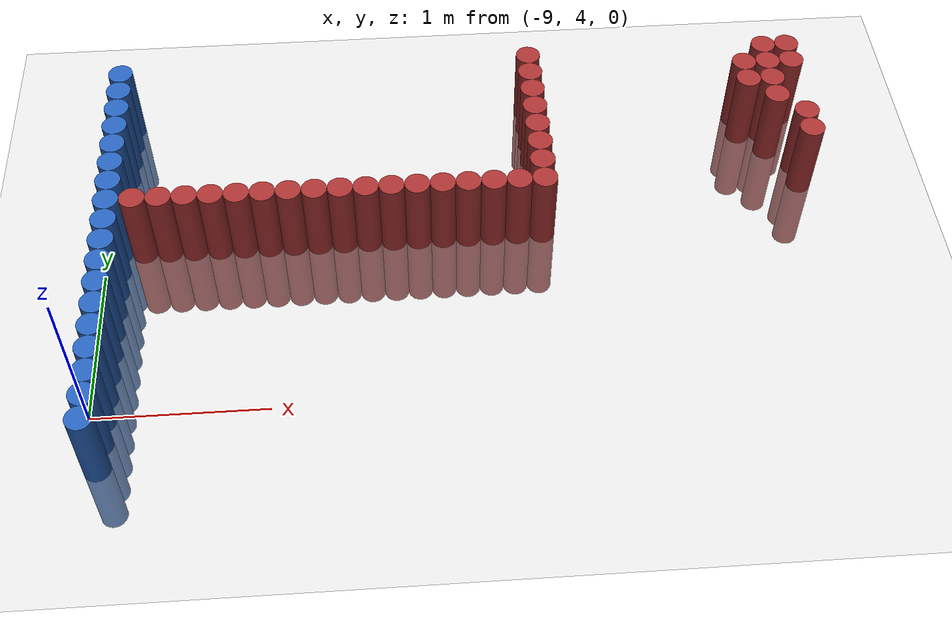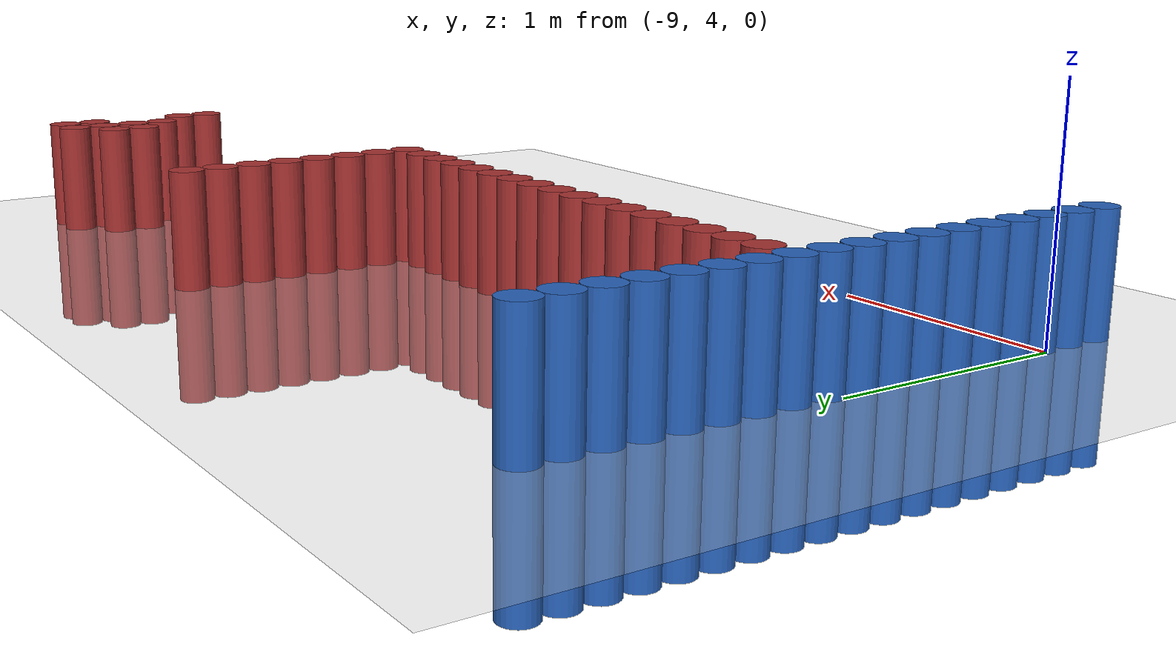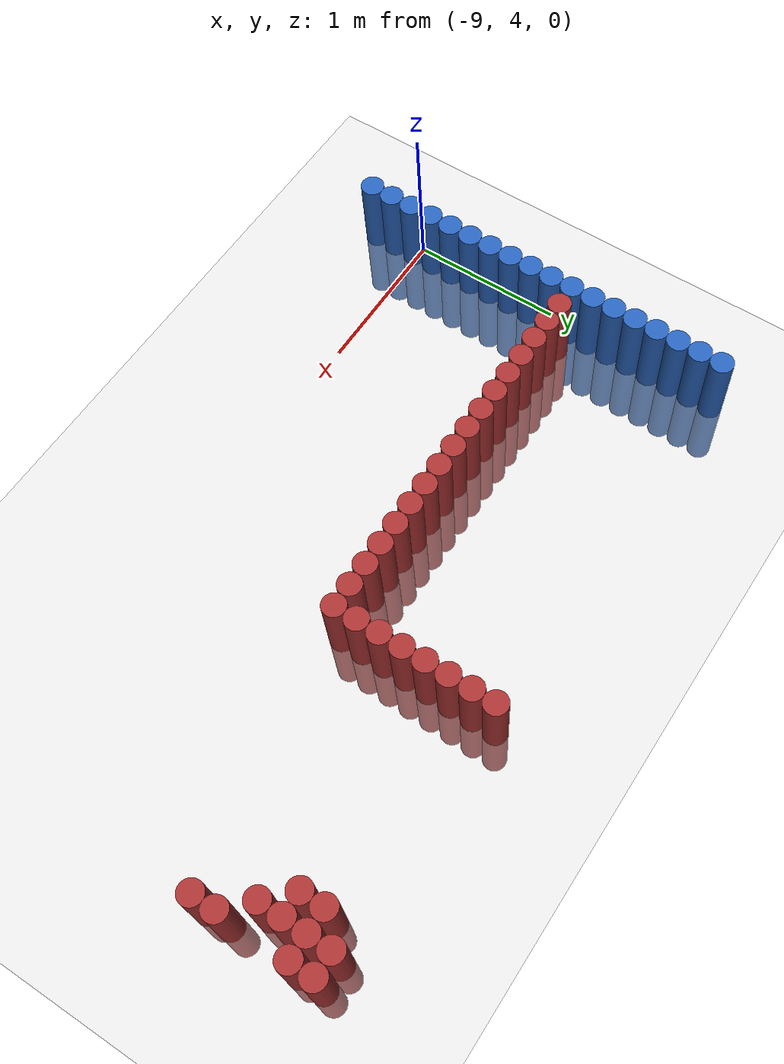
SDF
<sdf version="1.6">
 <world name="default">
  <model name="ground_plane">
   <static>1</static>
   <link name="link">
    <collision name="collision">
     <geometry><plane><normal>0 0 1</normal><size>100 100</size></plane></geometry>
     <surface><friction><ode><mu>100</mu><mu2>50</mu2></ode></friction></surface>
    </collision>
    <visual name="visual">
     <cast_shadows>0</cast_shadows>
     <geometry><plane><normal>0 0 1</normal><size>100 100</size></plane></geometry>
     <material>
      <script><uri>file://media/materials/scripts/gazebo.material</uri><name>Gazebo/Grey</name></script>
     </material>
    </visual>
   </link>
  </model>
  <model name="unit_cylinder_106">
   <static>1</static>
   <pose>-8.925000 3.675000 0.000000 0.000000 0.000000 0.000000</pose>
   <link name="link">
    <inertial>
     <mass>1</mass>
     <inertia><ixx>0.145833</ixx><ixy>0</ixy><ixz>0</ixz><iyy>0.145833</iyy><iyz>0</iyz><izz>0.125</izz></inertia>
    </inertial>
    <collision name="collision">
     <geometry><cylinder><radius>0.075000</radius><length>1</length></cylinder></geometry>
    </collision>
    <visual name="visual">
     <geometry><cylinder><radius>0.075000</radius><length>1</length></cylinder></geometry>
     <material>
      <ambient>0.152000 0.379000 0.720000 1</ambient>
      <diffuse>0.152000 0.379000 0.720000 1</diffuse>
     </material>
     <material>
      <script><name>Gazebo/Grey</name><uri>file://media/materials/scripts/gazebo.material</uri></script>
     </material>
    </visual>
   </link>
  </model>
  <model name="unit_cylinder_108">
   <static>1</static>
   <pose>-8.925000 3.825000 0.000000 0.000000 0.000000 0.000000</pose>
   <link name="link">
    <inertial>
     <mass>1</mass>
     <inertia><ixx>0.145833</ixx><ixy>0</ixy><ixz>0</ixz><iyy>0.145833</iyy><iyz>0</iyz><izz>0.125</izz></inertia>
    </inertial>
    <collision name="collision">
     <geometry><cylinder><radius>0.075000</radius><length>1</length></cylinder></geometry>
    </collision>
    <visual name="visual">
     <geometry><cylinder><radius>0.075000</radius><length>1</length></cylinder></geometry>
     <material>
      <ambient>0.152000 0.379000 0.720000 1</ambient>
      <diffuse>0.152000 0.379000 0.720000 1</diffuse>
     </material>
     <material>
      <script><name>Gazebo/Grey</name><uri>file://media/materials/scripts/gazebo.material</uri></script>
     </material>
    </visual>
   </link>
  </model>
  <model name="unit_cylinder_110">
   <static>1</static>
   <pose>-8.925000 3.975000 0.000000 0.000000 0.000000 0.000000</pose>
   <link name="link">
    <inertial>
     <mass>1</mass>
     <inertia><ixx>0.145833</ixx><ixy>0</ixy><ixz>0</ixz><iyy>0.145833</iyy><iyz>0</iyz><izz>0.125</izz></inertia>
    </inertial>
    <collision name="collision">
     <geometry><cylinder><radius>0.075000</radius><length>1</length></cylinder></geometry>
    </collision>
    <visual name="visual">
     <geometry><cylinder><radius>0.075000</radius><length>1</length></cylinder></geometry>
     <material>
      <ambient>0.152000 0.379000 0.720000 1</ambient>
      <diffuse>0.152000 0.379000 0.720000 1</diffuse>
     </material>
     <material>
      <script><name>Gazebo/Grey</name><uri>file://media/materials/scripts/gazebo.material</uri></script>
     </material>
    </visual>
   </link>
  </model>
  <model name="unit_cylinder_112">
   <static>1</static>
   <pose>-8.925000 4.125000 0.000000 0.000000 0.000000 0.000000</pose>
   <link name="link">
    <inertial>
     <mass>1</mass>
     <inertia><ixx>0.145833</ixx><ixy>0</ixy><ixz>0</ixz><iyy>0.145833</iyy><iyz>0</iyz><izz>0.125</izz></inertia>
    </inertial>
    <collision name="collision">
     <geometry><cylinder><radius>0.075000</radius><length>1</length></cylinder></geometry>
    </collision>
    <visual name="visual">
     <geometry><cylinder><radius>0.075000</radius><length>1</length></cylinder></geometry>
     <material>
      <ambient>0.152000 0.379000 0.720000 1</ambient>
      <diffuse>0.152000 0.379000 0.720000 1</diffuse>
     </material>
     <material>
      <script><name>Gazebo/Grey</name><uri>file://media/materials/scripts/gazebo.material</uri></script>
     </material>
    </visual>
   </link>
  </model>
  <model name="unit_cylinder_114">
   <static>1</static>
   <pose>-8.925000 4.275000 0.000000 0.000000 0.000000 0.000000</pose>
   <link name="link">
    <inertial>
     <mass>1</mass>
     <inertia><ixx>0.145833</ixx><ixy>0</ixy><ixz>0</ixz><iyy>0.145833</iyy><iyz>0</iyz><izz>0.125</izz></inertia>
    </inertial>
    <collision name="collision">
     <geometry><cylinder><radius>0.075000</radius><length>1</length></cylinder></geometry>
    </collision>
    <visual name="visual">
     <geometry><cylinder><radius>0.075000</radius><length>1</length></cylinder></geometry>
     <material>
      <ambient>0.152000 0.379000 0.720000 1</ambient>
      <diffuse>0.152000 0.379000 0.720000 1</diffuse>
     </material>
     <material>
      <script><name>Gazebo/Grey</name><uri>file://media/materials/scripts/gazebo.material</uri></script>
     </material>
    </visual>
   </link>
  </model>
  <model name="unit_cylinder_116">
   <static>1</static>
   <pose>-8.925000 4.425000 0.000000 0.000000 0.000000 0.000000</pose>
   <link name="link">
    <inertial>
     <mass>1</mass>
     <inertia><ixx>0.145833</ixx><ixy>0</ixy><ixz>0</ixz><iyy>0.145833</iyy><iyz>0</iyz><izz>0.125</izz></inertia>
    </inertial>
    <collision name="collision">
     <geometry><cylinder><radius>0.075000</radius><length>1</length></cylinder></geometry>
    </collision>
    <visual name="visual">
     <geometry><cylinder><radius>0.075000</radius><length>1</length></cylinder></geometry>
     <material>
      <ambient>0.152000 0.379000 0.720000 1</ambient>
      <diffuse>0.152000 0.379000 0.720000 1</diffuse>
     </material>
     <material>
      <script><name>Gazebo/Grey</name><uri>file://media/materials/scripts/gazebo.material</uri></script>
     </material>
    </visual>
   </link>
  </model>
  <model name="unit_cylinder_118">
   <static>1</static>
   <pose>-8.925000 4.575000 0.000000 0.000000 0.000000 0.000000</pose>
   <link name="link">
    <inertial>
     <mass>1</mass>
     <inertia><ixx>0.145833</ixx><ixy>0</ixy><ixz>0</ixz><iyy>0.145833</iyy><iyz>0</iyz><izz>0.125</izz></inertia>
    </inertial>
    <collision name="collision">
     <geometry><cylinder><radius>0.075000</radius><length>1</length></cylinder></geometry>
    </collision>
    <visual name="visual">
     <geometry><cylinder><radius>0.075000</radius><length>1</length></cylinder></geometry>
     <material>
      <ambient>0.152000 0.379000 0.720000 1</ambient>
      <diffuse>0.152000 0.379000 0.720000 1</diffuse>
     </material>
     <material>
      <script><name>Gazebo/Grey</name><uri>file://media/materials/scripts/gazebo.material</uri></script>
     </material>
    </visual>
   </link>
  </model>
  <model name="unit_cylinder_120">
   <static>1</static>
   <pose>-8.925000 4.725000 0.000000 0.000000 0.000000 0.000000</pose>
   <link name="link">
    <inertial>
     <mass>1</mass>
     <inertia><ixx>0.145833</ixx><ixy>0</ixy><ixz>0</ixz><iyy>0.145833</iyy><iyz>0</iyz><izz>0.125</izz></inertia>
    </inertial>
    <collision name="collision">
     <geometry><cylinder><radius>0.075000</radius><length>1</length></cylinder></geometry>
    </collision>
    <visual name="visual">
     <geometry><cylinder><radius>0.075000</radius><length>1</length></cylinder></geometry>
     <material>
      <ambient>0.152000 0.379000 0.720000 1</ambient>
      <diffuse>0.152000 0.379000 0.720000 1</diffuse>
     </material>
     <material>
      <script><name>Gazebo/Grey</name><uri>file://media/materials/scripts/gazebo.material</uri></script>
     </material>
    </visual>
   </link>
  </model>
  <model name="unit_cylinder_122">
   <static>1</static>
   <pose>-8.925000 4.875000 0.000000 0.000000 0.000000 0.000000</pose>
   <link name="link">
    <inertial>
     <mass>1</mass>
     <inertia><ixx>0.145833</ixx><ixy>0</ixy><ixz>0</ixz><iyy>0.145833</iyy><iyz>0</iyz><izz>0.125</izz></inertia>
    </inertial>
    <collision name="collision">
     <geometry><cylinder><radius>0.075000</radius><length>1</length></cylinder></geometry>
    </collision>
    <visual name="visual">
     <geometry><cylinder><radius>0.075000</radius><length>1</length></cylinder></geometry>
     <material>
      <ambient>0.152000 0.379000 0.720000 1</ambient>
      <diffuse>0.152000 0.379000 0.720000 1</diffuse>
     </material>
     <material>
      <script><name>Gazebo/Grey</name><uri>file://media/materials/scripts/gazebo.material</uri></script>
     </material>
    </visual>
   </link>
  </model>
  <model name="unit_cylinder_124">
   <static>1</static>
   <pose>-8.925000 5.025000 0.000000 0.000000 0.000000 0.000000</pose>
   <link name="link">
    <inertial>
     <mass>1</mass>
     <inertia><ixx>0.145833</ixx><ixy>0</ixy><ixz>0</ixz><iyy>0.145833</iyy><iyz>0</iyz><izz>0.125</izz></inertia>
    </inertial>
    <collision name="collision">
     <geometry><cylinder><radius>0.075000</radius><length>1</length></cylinder></geometry>
    </collision>
    <visual name="visual">
     <geometry><cylinder><radius>0.075000</radius><length>1</length></cylinder></geometry>
     <material>
      <ambient>0.152000 0.379000 0.720000 1</ambient>
      <diffuse>0.152000 0.379000 0.720000 1</diffuse>
     </material>
     <material>
      <script><name>Gazebo/Grey</name><uri>file://media/materials/scripts/gazebo.material</uri></script>
     </material>
    </visual>
   </link>
  </model>
  <model name="unit_cylinder_125">
   <static>1</static>
   <pose>-8.925000 5.175000 0.000000 0.000000 0.000000 0.000000</pose>
   <link name="link">
    <inertial>
     <mass>1</mass>
     <inertia><ixx>0.145833</ixx><ixy>0</ixy><ixz>0</ixz><iyy>0.145833</iyy><iyz>0</iyz><izz>0.125</izz></inertia>
    </inertial>
    <collision name="collision">
     <geometry><cylinder><radius>0.075000</radius><length>1</length></cylinder></geometry>
    </collision>
    <visual name="visual">
     <geometry><cylinder><radius>0.075000</radius><length>1</length></cylinder></geometry>
     <material>
      <ambient>0.152000 0.379000 0.720000 1</ambient>
      <diffuse>0.152000 0.379000 0.720000 1</diffuse>
     </material>
     <material>
      <script><name>Gazebo/Grey</name><uri>file://media/materials/scripts/gazebo.material</uri></script>
     </material>
    </visual>
   </link>
  </model>
  <model name="unit_cylinder_126">
   <static>1</static>
   <pose>-8.925000 5.325000 0.000000 0.000000 0.000000 0.000000</pose>
   <link name="link">
    <inertial>
     <mass>1</mass>
     <inertia><ixx>0.145833</ixx><ixy>0</ixy><ixz>0</ixz><iyy>0.145833</iyy><iyz>0</iyz><izz>0.125</izz></inertia>
    </inertial>
    <collision name="collision">
     <geometry><cylinder><radius>0.075000</radius><length>1</length></cylinder></geometry>
    </collision>
    <visual name="visual">
     <geometry><cylinder><radius>0.075000</radius><length>1</length></cylinder></geometry>
     <material>
      <ambient>0.152000 0.379000 0.720000 1</ambient>
      <diffuse>0.152000 0.379000 0.720000 1</diffuse>
     </material>
     <material>
      <script><name>Gazebo/Grey</name><uri>file://media/materials/scripts/gazebo.material</uri></script>
     </material>
    </visual>
   </link>
  </model>
  <model name="unit_cylinder_127">
   <static>1</static>
   <pose>-8.925000 5.475000 0.000000 0.000000 0.000000 0.000000</pose>
   <link name="link">
    <inertial>
     <mass>1</mass>
     <inertia><ixx>0.145833</ixx><ixy>0</ixy><ixz>0</ixz><iyy>0.145833</iyy><iyz>0</iyz><izz>0.125</izz></inertia>
    </inertial>
    <collision name="collision">
     <geometry><cylinder><radius>0.075000</radius><length>1</length></cylinder></geometry>
    </collision>
    <visual name="visual">
     <geometry><cylinder><radius>0.075000</radius><length>1</length></cylinder></geometry>
     <material>
      <ambient>0.152000 0.379000 0.720000 1</ambient>
      <diffuse>0.152000 0.379000 0.720000 1</diffuse>
     </material>
     <material>
      <script><name>Gazebo/Grey</name><uri>file://media/materials/scripts/gazebo.material</uri></script>
     </material>
    </visual>
   </link>
  </model>
  <model name="unit_cylinder_128">
   <static>1</static>
   <pose>-8.925000 5.625000 0.000000 0.000000 0.000000 0.000000</pose>
   <link name="link">
    <inertial>
     <mass>1</mass>
     <inertia><ixx>0.145833</ixx><ixy>0</ixy><ixz>0</ixz><iyy>0.145833</iyy><iyz>0</iyz><izz>0.125</izz></inertia>
    </inertial>
    <collision name="collision">
     <geometry><cylinder><radius>0.075000</radius><length>1</length></cylinder></geometry>
    </collision>
    <visual name="visual">
     <geometry><cylinder><radius>0.075000</radius><length>1</length></cylinder></geometry>
     <material>
      <ambient>0.152000 0.379000 0.720000 1</ambient>
      <diffuse>0.152000 0.379000 0.720000 1</diffuse>
     </material>
     <material>
      <script><name>Gazebo/Grey</name><uri>file://media/materials/scripts/gazebo.material</uri></script>
     </material>
    </visual>
   </link>
  </model>
  <model name="unit_cylinder_129">
   <static>1</static>
   <pose>-8.925000 5.775000 0.000000 0.000000 0.000000 0.000000</pose>
   <link name="link">
    <inertial>
     <mass>1</mass>
     <inertia><ixx>0.145833</ixx><ixy>0</ixy><ixz>0</ixz><iyy>0.145833</iyy><iyz>0</iyz><izz>0.125</izz></inertia>
    </inertial>
    <collision name="collision">
     <geometry><cylinder><radius>0.075000</radius><length>1</length></cylinder></geometry>
    </collision>
    <visual name="visual">
     <geometry><cylinder><radius>0.075000</radius><length>1</length></cylinder></geometry>
     <material>
      <ambient>0.152000 0.379000 0.720000 1</ambient>
      <diffuse>0.152000 0.379000 0.720000 1</diffuse>
     </material>
     <material>
      <script><name>Gazebo/Grey</name><uri>file://media/materials/scripts/gazebo.material</uri></script>
     </material>
    </visual>
   </link>
  </model>
  <model name="unit_cylinder_130">
   <static>1</static>
   <pose>-8.925000 5.925000 0.000000 0.000000 0.000000 0.000000</pose>
   <link name="link">
    <inertial>
     <mass>1</mass>
     <inertia><ixx>0.145833</ixx><ixy>0</ixy><ixz>0</ixz><iyy>0.145833</iyy><iyz>0</iyz><izz>0.125</izz></inertia>
    </inertial>
    <collision name="collision">
     <geometry><cylinder><radius>0.075000</radius><length>1</length></cylinder></geometry>
    </collision>
    <visual name="visual">
     <geometry><cylinder><radius>0.075000</radius><length>1</length></cylinder></geometry>
     <material>
      <ambient>0.152000 0.379000 0.720000 1</ambient>
      <diffuse>0.152000 0.379000 0.720000 1</diffuse>
     </material>
     <material>
      <script><name>Gazebo/Grey</name><uri>file://media/materials/scripts/gazebo.material</uri></script>
     </material>
    </visual>
   </link>
  </model>
  <model name="unit_cylinder_131">
   <static>1</static>
   <pose>-8.925000 6.075000 0.000000 0.000000 0.000000 0.000000</pose>
   <link name="link">
    <inertial>
     <mass>1</mass>
     <inertia><ixx>0.145833</ixx><ixy>0</ixy><ixz>0</ixz><iyy>0.145833</iyy><iyz>0</iyz><izz>0.125</izz></inertia>
    </inertial>
    <collision name="collision">
     <geometry><cylinder><radius>0.075000</radius><length>1</length></cylinder></geometry>
    </collision>
    <visual name="visual">
     <geometry><cylinder><radius>0.075000</radius><length>1</length></cylinder></geometry>
     <material>
      <ambient>0.152000 0.379000 0.720000 1</ambient>
      <diffuse>0.152000 0.379000 0.720000 1</diffuse>
     </material>
     <material>
      <script><name>Gazebo/Grey</name><uri>file://media/materials/scripts/gazebo.material</uri></script>
     </material>
    </visual>
   </link>
  </model>
  <model name="unit_cylinder_132">
   <static>1</static>
   <pose>-8.925000 6.225000 0.000000 0.000000 0.000000 0.000000</pose>
   <link name="link">
    <inertial>
     <mass>1</mass>
     <inertia><ixx>0.145833</ixx><ixy>0</ixy><ixz>0</ixz><iyy>0.145833</iyy><iyz>0</iyz><izz>0.125</izz></inertia>
    </inertial>
    <collision name="collision">
     <geometry><cylinder><radius>0.075000</radius><length>1</length></cylinder></geometry>
    </collision>
    <visual name="visual">
     <geometry><cylinder><radius>0.075000</radius><length>1</length></cylinder></geometry>
     <material>
      <ambient>0.152000 0.379000 0.720000 1</ambient>
      <diffuse>0.152000 0.379000 0.720000 1</diffuse>
     </material>
     <material>
      <script><name>Gazebo/Grey</name><uri>file://media/materials/scripts/gazebo.material</uri></script>
     </material>
    </visual>
   </link>
  </model>
  <model name="unit_cylinder_155">
   <static>1</static>
   <pose>-8.775000 5.175000 0.000000 0.000000 0.000000 0.000000</pose>
   <link name="link">
    <inertial>
     <mass>1</mass>
     <inertia><ixx>0.145833</ixx><ixy>0</ixy><ixz>0</ixz><iyy>0.145833</iyy><iyz>0</iyz><izz>0.125</izz></inertia>
    </inertial>
    <collision name="collision">
     <geometry><cylinder><radius>0.075000</radius><length>1</length></cylinder></geometry>
    </collision>
    <visual name="visual">
     <geometry><cylinder><radius>0.075000</radius><length>1</length></cylinder></geometry>
     <material>
      <ambient>0.648000 0.192000 0.192000 1</ambient>
      <diffuse>0.648000 0.192000 0.192000 1</diffuse>
     </material>
     <material>
      <script><name>Gazebo/Grey</name><uri>file://media/materials/scripts/gazebo.material</uri></script>
     </material>
    </visual>
   </link>
  </model>
  <model name="unit_cylinder_157">
   <static>1</static>
   <pose>-8.625000 5.175000 0.000000 0.000000 0.000000 0.000000</pose>
   <link name="link">
    <inertial>
     <mass>1</mass>
     <inertia><ixx>0.145833</ixx><ixy>0</ixy><ixz>0</ixz><iyy>0.145833</iyy><iyz>0</iyz><izz>0.125</izz></inertia>
    </inertial>
    <collision name="collision">
     <geometry><cylinder><radius>0.075000</radius><length>1</length></cylinder></geometry>
    </collision>
    <visual name="visual">
     <geometry><cylinder><radius>0.075000</radius><length>1</length></cylinder></geometry>
     <material>
      <ambient>0.648000 0.192000 0.192000 1</ambient>
      <diffuse>0.648000 0.192000 0.192000 1</diffuse>
     </material>
     <material>
      <script><name>Gazebo/Grey</name><uri>file://media/materials/scripts/gazebo.material</uri></script>
     </material>
    </visual>
   </link>
  </model>
  <model name="unit_cylinder_159">
   <static>1</static>
   <pose>-8.475000 5.175000 0.000000 0.000000 0.000000 0.000000</pose>
   <link name="link">
    <inertial>
     <mass>1</mass>
     <inertia><ixx>0.145833</ixx><ixy>0</ixy><ixz>0</ixz><iyy>0.145833</iyy><iyz>0</iyz><izz>0.125</izz></inertia>
    </inertial>
    <collision name="collision">
     <geometry><cylinder><radius>0.075000</radius><length>1</length></cylinder></geometry>
    </collision>
    <visual name="visual">
     <geometry><cylinder><radius>0.075000</radius><length>1</length></cylinder></geometry>
     <material>
      <ambient>0.648000 0.192000 0.192000 1</ambient>
      <diffuse>0.648000 0.192000 0.192000 1</diffuse>
     </material>
     <material>
      <script><name>Gazebo/Grey</name><uri>file://media/materials/scripts/gazebo.material</uri></script>
     </material>
    </visual>
   </link>
  </model>
  <model name="unit_cylinder_161">
   <static>1</static>
   <pose>-8.325000 5.175000 0.000000 0.000000 0.000000 0.000000</pose>
   <link name="link">
    <inertial>
     <mass>1</mass>
     <inertia><ixx>0.145833</ixx><ixy>0</ixy><ixz>0</ixz><iyy>0.145833</iyy><iyz>0</iyz><izz>0.125</izz></inertia>
    </inertial>
    <collision name="collision">
     <geometry><cylinder><radius>0.075000</radius><length>1</length></cylinder></geometry>
    </collision>
    <visual name="visual">
     <geometry><cylinder><radius>0.075000</radius><length>1</length></cylinder></geometry>
     <material>
      <ambient>0.648000 0.192000 0.192000 1</ambient>
      <diffuse>0.648000 0.192000 0.192000 1</diffuse>
     </material>
     <material>
      <script><name>Gazebo/Grey</name><uri>file://media/materials/scripts/gazebo.material</uri></script>
     </material>
    </visual>
   </link>
  </model>
  <model name="unit_cylinder_163">
   <static>1</static>
   <pose>-8.175000 5.175000 0.000000 0.000000 0.000000 0.000000</pose>
   <link name="link">
    <inertial>
     <mass>1</mass>
     <inertia><ixx>0.145833</ixx><ixy>0</ixy><ixz>0</ixz><iyy>0.145833</iyy><iyz>0</iyz><izz>0.125</izz></inertia>
    </inertial>
    <collision name="collision">
     <geometry><cylinder><radius>0.075000</radius><length>1</length></cylinder></geometry>
    </collision>
    <visual name="visual">
     <geometry><cylinder><radius>0.075000</radius><length>1</length></cylinder></geometry>
     <material>
      <ambient>0.648000 0.192000 0.192000 1</ambient>
      <diffuse>0.648000 0.192000 0.192000 1</diffuse>
     </material>
     <material>
      <script><name>Gazebo/Grey</name><uri>file://media/materials/scripts/gazebo.material</uri></script>
     </material>
    </visual>
   </link>
  </model>
  <model name="unit_cylinder_176">
   <static>1</static>
   <pose>-8.025000 5.175000 0.000000 0.000000 0.000000 0.000000</pose>
   <link name="link">
    <inertial>
     <mass>1</mass>
     <inertia><ixx>0.145833</ixx><ixy>0</ixy><ixz>0</ixz><iyy>0.145833</iyy><iyz>0</iyz><izz>0.125</izz></inertia>
    </inertial>
    <collision name="collision">
     <geometry><cylinder><radius>0.075000</radius><length>1</length></cylinder></geometry>
    </collision>
    <visual name="visual">
     <geometry><cylinder><radius>0.075000</radius><length>1</length></cylinder></geometry>
     <material>
      <ambient>0.648000 0.192000 0.192000 1</ambient>
      <diffuse>0.648000 0.192000 0.192000 1</diffuse>
     </material>
     <material>
      <script><name>Gazebo/Grey</name><uri>file://media/materials/scripts/gazebo.material</uri></script>
     </material>
    </visual>
   </link>
  </model>
  <model name="unit_cylinder_178">
   <static>1</static>
   <pose>-7.875000 5.175000 0.000000 0.000000 0.000000 0.000000</pose>
   <link name="link">
    <inertial>
     <mass>1</mass>
     <inertia><ixx>0.145833</ixx><ixy>0</ixy><ixz>0</ixz><iyy>0.145833</iyy><iyz>0</iyz><izz>0.125</izz></inertia>
    </inertial>
    <collision name="collision">
     <geometry><cylinder><radius>0.075000</radius><length>1</length></cylinder></geometry>
    </collision>
    <visual name="visual">
     <geometry><cylinder><radius>0.075000</radius><length>1</length></cylinder></geometry>
     <material>
      <ambient>0.648000 0.192000 0.192000 1</ambient>
      <diffuse>0.648000 0.192000 0.192000 1</diffuse>
     </material>
     <material>
      <script><name>Gazebo/Grey</name><uri>file://media/materials/scripts/gazebo.material</uri></script>
     </material>
    </visual>
   </link>
  </model>
  <model name="unit_cylinder_180">
   <static>1</static>
   <pose>-7.725000 5.175000 0.000000 0.000000 0.000000 0.000000</pose>
   <link name="link">
    <inertial>
     <mass>1</mass>
     <inertia><ixx>0.145833</ixx><ixy>0</ixy><ixz>0</ixz><iyy>0.145833</iyy><iyz>0</iyz><izz>0.125</izz></inertia>
    </inertial>
    <collision name="collision">
     <geometry><cylinder><radius>0.075000</radius><length>1</length></cylinder></geometry>
    </collision>
    <visual name="visual">
     <geometry><cylinder><radius>0.075000</radius><length>1</length></cylinder></geometry>
     <material>
      <ambient>0.648000 0.192000 0.192000 1</ambient>
      <diffuse>0.648000 0.192000 0.192000 1</diffuse>
     </material>
     <material>
      <script><name>Gazebo/Grey</name><uri>file://media/materials/scripts/gazebo.material</uri></script>
     </material>
    </visual>
   </link>
  </model>
  <model name="unit_cylinder_182">
   <static>1</static>
   <pose>-7.575000 5.175000 0.000000 0.000000 0.000000 0.000000</pose>
   <link name="link">
    <inertial>
     <mass>1</mass>
     <inertia><ixx>0.145833</ixx><ixy>0</ixy><ixz>0</ixz><iyy>0.145833</iyy><iyz>0</iyz><izz>0.125</izz></inertia>
    </inertial>
    <collision name="collision">
     <geometry><cylinder><radius>0.075000</radius><length>1</length></cylinder></geometry>
    </collision>
    <visual name="visual">
     <geometry><cylinder><radius>0.075000</radius><length>1</length></cylinder></geometry>
     <material>
      <ambient>0.648000 0.192000 0.192000 1</ambient>
      <diffuse>0.648000 0.192000 0.192000 1</diffuse>
     </material>
     <material>
      <script><name>Gazebo/Grey</name><uri>file://media/materials/scripts/gazebo.material</uri></script>
     </material>
    </visual>
   </link>
  </model>
  <model name="unit_cylinder_184">
   <static>1</static>
   <pose>-7.425000 5.175000 0.000000 0.000000 0.000000 0.000000</pose>
   <link name="link">
    <inertial>
     <mass>1</mass>
     <inertia><ixx>0.145833</ixx><ixy>0</ixy><ixz>0</ixz><iyy>0.145833</iyy><iyz>0</iyz><izz>0.125</izz></inertia>
    </inertial>
    <collision name="collision">
     <geometry><cylinder><radius>0.075000</radius><length>1</length></cylinder></geometry>
    </collision>
    <visual name="visual">
     <geometry><cylinder><radius>0.075000</radius><length>1</length></cylinder></geometry>
     <material>
      <ambient>0.648000 0.192000 0.192000 1</ambient>
      <diffuse>0.648000 0.192000 0.192000 1</diffuse>
     </material>
     <material>
      <script><name>Gazebo/Grey</name><uri>file://media/materials/scripts/gazebo.material</uri></script>
     </material>
    </visual>
   </link>
  </model>
  <model name="unit_cylinder_186">
   <static>1</static>
   <pose>-7.275000 5.175000 0.000000 0.000000 0.000000 0.000000</pose>
   <link name="link">
    <inertial>
     <mass>1</mass>
     <inertia><ixx>0.145833</ixx><ixy>0</ixy><ixz>0</ixz><iyy>0.145833</iyy><iyz>0</iyz><izz>0.125</izz></inertia>
    </inertial>
    <collision name="collision">
     <geometry><cylinder><radius>0.075000</radius><length>1</length></cylinder></geometry>
    </collision>
    <visual name="visual">
     <geometry><cylinder><radius>0.075000</radius><length>1</length></cylinder></geometry>
     <material>
      <ambient>0.648000 0.192000 0.192000 1</ambient>
      <diffuse>0.648000 0.192000 0.192000 1</diffuse>
     </material>
     <material>
      <script><name>Gazebo/Grey</name><uri>file://media/materials/scripts/gazebo.material</uri></script>
     </material>
    </visual>
   </link>
  </model>
  <model name="unit_cylinder_198">
   <static>1</static>
   <pose>-7.125000 5.175000 0.000000 0.000000 0.000000 0.000000</pose>
   <link name="link">
    <inertial>
     <mass>1</mass>
     <inertia><ixx>0.145833</ixx><ixy>0</ixy><ixz>0</ixz><iyy>0.145833</iyy><iyz>0</iyz><izz>0.125</izz></inertia>
    </inertial>
    <collision name="collision">
     <geometry><cylinder><radius>0.075000</radius><length>1</length></cylinder></geometry>
    </collision>
    <visual name="visual">
     <geometry><cylinder><radius>0.075000</radius><length>1</length></cylinder></geometry>
     <material>
      <ambient>0.648000 0.192000 0.192000 1</ambient>
      <diffuse>0.648000 0.192000 0.192000 1</diffuse>
     </material>
     <material>
      <script><name>Gazebo/Grey</name><uri>file://media/materials/scripts/gazebo.material</uri></script>
     </material>
    </visual>
   </link>
  </model>
  <model name="unit_cylinder_200">
   <static>1</static>
   <pose>-6.975000 5.175000 0.000000 0.000000 0.000000 0.000000</pose>
   <link name="link">
    <inertial>
     <mass>1</mass>
     <inertia><ixx>0.145833</ixx><ixy>0</ixy><ixz>0</ixz><iyy>0.145833</iyy><iyz>0</iyz><izz>0.125</izz></inertia>
    </inertial>
    <collision name="collision">
     <geometry><cylinder><radius>0.075000</radius><length>1</length></cylinder></geometry>
    </collision>
    <visual name="visual">
     <geometry><cylinder><radius>0.075000</radius><length>1</length></cylinder></geometry>
     <material>
      <ambient>0.648000 0.192000 0.192000 1</ambient>
      <diffuse>0.648000 0.192000 0.192000 1</diffuse>
     </material>
     <material>
      <script><name>Gazebo/Grey</name><uri>file://media/materials/scripts/gazebo.material</uri></script>
     </material>
    </visual>
   </link>
  </model>
  <model name="unit_cylinder_202">
   <static>1</static>
   <pose>-6.825000 5.175000 0.000000 0.000000 0.000000 0.000000</pose>
   <link name="link">
    <inertial>
     <mass>1</mass>
     <inertia><ixx>0.145833</ixx><ixy>0</ixy><ixz>0</ixz><iyy>0.145833</iyy><iyz>0</iyz><izz>0.125</izz></inertia>
    </inertial>
    <collision name="collision">
     <geometry><cylinder><radius>0.075000</radius><length>1</length></cylinder></geometry>
    </collision>
    <visual name="visual">
     <geometry><cylinder><radius>0.075000</radius><length>1</length></cylinder></geometry>
     <material>
      <ambient>0.648000 0.192000 0.192000 1</ambient>
      <diffuse>0.648000 0.192000 0.192000 1</diffuse>
     </material>
     <material>
      <script><name>Gazebo/Grey</name><uri>file://media/materials/scripts/gazebo.material</uri></script>
     </material>
    </visual>
   </link>
  </model>
  <model name="unit_cylinder_206">
   <static>1</static>
   <pose>-6.675000 5.175000 0.000000 0.000000 0.000000 0.000000</pose>
   <link name="link">
    <inertial>
     <mass>1</mass>
     <inertia><ixx>0.145833</ixx><ixy>0</ixy><ixz>0</ixz><iyy>0.145833</iyy><iyz>0</iyz><izz>0.125</izz></inertia>
    </inertial>
    <collision name="collision">
     <geometry><cylinder><radius>0.075000</radius><length>1</length></cylinder></geometry>
    </collision>
    <visual name="visual">
     <geometry><cylinder><radius>0.075000</radius><length>1</length></cylinder></geometry>
     <material>
      <ambient>0.648000 0.192000 0.192000 1</ambient>
      <diffuse>0.648000 0.192000 0.192000 1</diffuse>
     </material>
     <material>
      <script><name>Gazebo/Grey</name><uri>file://media/materials/scripts/gazebo.material</uri></script>
     </material>
    </visual>
   </link>
  </model>
  <model name="unit_cylinder_211">
   <static>1</static>
   <pose>-6.525000 5.175000 0.000000 0.000000 0.000000 0.000000</pose>
   <link name="link">
    <inertial>
     <mass>1</mass>
     <inertia><ixx>0.145833</ixx><ixy>0</ixy><ixz>0</ixz><iyy>0.145833</iyy><iyz>0</iyz><izz>0.125</izz></inertia>
    </inertial>
    <collision name="collision">
     <geometry><cylinder><radius>0.075000</radius><length>1</length></cylinder></geometry>
    </collision>
    <visual name="visual">
     <geometry><cylinder><radius>0.075000</radius><length>1</length></cylinder></geometry>
     <material>
      <ambient>0.648000 0.192000 0.192000 1</ambient>
      <diffuse>0.648000 0.192000 0.192000 1</diffuse>
     </material>
     <material>
      <script><name>Gazebo/Grey</name><uri>file://media/materials/scripts/gazebo.material</uri></script>
     </material>
    </visual>
   </link>
  </model>
  <model name="unit_cylinder_216">
   <static>1</static>
   <pose>-6.375000 5.175000 0.000000 0.000000 0.000000 0.000000</pose>
   <link name="link">
    <inertial>
     <mass>1</mass>
     <inertia><ixx>0.145833</ixx><ixy>0</ixy><ixz>0</ixz><iyy>0.145833</iyy><iyz>0</iyz><izz>0.125</izz></inertia>
    </inertial>
    <collision name="collision">
     <geometry><cylinder><radius>0.075000</radius><length>1</length></cylinder></geometry>
    </collision>
    <visual name="visual">
     <geometry><cylinder><radius>0.075000</radius><length>1</length></cylinder></geometry>
     <material>
      <ambient>0.648000 0.192000 0.192000 1</ambient>
      <diffuse>0.648000 0.192000 0.192000 1</diffuse>
     </material>
     <material>
      <script><name>Gazebo/Grey</name><uri>file://media/materials/scripts/gazebo.material</uri></script>
     </material>
    </visual>
   </link>
  </model>
  <model name="unit_cylinder_217">
   <static>1</static>
   <pose>-6.375000 5.325000 0.000000 0.000000 0.000000 0.000000</pose>
   <link name="link">
    <inertial>
     <mass>1</mass>
     <inertia><ixx>0.145833</ixx><ixy>0</ixy><ixz>0</ixz><iyy>0.145833</iyy><iyz>0</iyz><izz>0.125</izz></inertia>
    </inertial>
    <collision name="collision">
     <geometry><cylinder><radius>0.075000</radius><length>1</length></cylinder></geometry>
    </collision>
    <visual name="visual">
     <geometry><cylinder><radius>0.075000</radius><length>1</length></cylinder></geometry>
     <material>
      <ambient>0.648000 0.192000 0.192000 1</ambient>
      <diffuse>0.648000 0.192000 0.192000 1</diffuse>
     </material>
     <material>
      <script><name>Gazebo/Grey</name><uri>file://media/materials/scripts/gazebo.material</uri></script>
     </material>
    </visual>
   </link>
  </model>
  <model name="unit_cylinder_218">
   <static>1</static>
   <pose>-6.375000 5.475000 0.000000 0.000000 0.000000 0.000000</pose>
   <link name="link">
    <inertial>
     <mass>1</mass>
     <inertia><ixx>0.145833</ixx><ixy>0</ixy><ixz>0</ixz><iyy>0.145833</iyy><iyz>0</iyz><izz>0.125</izz></inertia>
    </inertial>
    <collision name="collision">
     <geometry><cylinder><radius>0.075000</radius><length>1</length></cylinder></geometry>
    </collision>
    <visual name="visual">
     <geometry><cylinder><radius>0.075000</radius><length>1</length></cylinder></geometry>
     <material>
      <ambient>0.648000 0.192000 0.192000 1</ambient>
      <diffuse>0.648000 0.192000 0.192000 1</diffuse>
     </material>
     <material>
      <script><name>Gazebo/Grey</name><uri>file://media/materials/scripts/gazebo.material</uri></script>
     </material>
    </visual>
   </link>
  </model>
  <model name="unit_cylinder_219">
   <static>1</static>
   <pose>-6.375000 5.625000 0.000000 0.000000 0.000000 0.000000</pose>
   <link name="link">
    <inertial>
     <mass>1</mass>
     <inertia><ixx>0.145833</ixx><ixy>0</ixy><ixz>0</ixz><iyy>0.145833</iyy><iyz>0</iyz><izz>0.125</izz></inertia>
    </inertial>
    <collision name="collision">
     <geometry><cylinder><radius>0.075000</radius><length>1</length></cylinder></geometry>
    </collision>
    <visual name="visual">
     <geometry><cylinder><radius>0.075000</radius><length>1</length></cylinder></geometry>
     <material>
      <ambient>0.648000 0.192000 0.192000 1</ambient>
      <diffuse>0.648000 0.192000 0.192000 1</diffuse>
     </material>
     <material>
      <script><name>Gazebo/Grey</name><uri>file://media/materials/scripts/gazebo.material</uri></script>
     </material>
    </visual>
   </link>
  </model>
  <model name="unit_cylinder_220">
   <static>1</static>
   <pose>-6.375000 5.775000 0.000000 0.000000 0.000000 0.000000</pose>
   <link name="link">
    <inertial>
     <mass>1</mass>
     <inertia><ixx>0.145833</ixx><ixy>0</ixy><ixz>0</ixz><iyy>0.145833</iyy><iyz>0</iyz><izz>0.125</izz></inertia>
    </inertial>
    <collision name="collision">
     <geometry><cylinder><radius>0.075000</radius><length>1</length></cylinder></geometry>
    </collision>
    <visual name="visual">
     <geometry><cylinder><radius>0.075000</radius><length>1</length></cylinder></geometry>
     <material>
      <ambient>0.648000 0.192000 0.192000 1</ambient>
      <diffuse>0.648000 0.192000 0.192000 1</diffuse>
     </material>
     <material>
      <script><name>Gazebo/Grey</name><uri>file://media/materials/scripts/gazebo.material</uri></script>
     </material>
    </visual>
   </link>
  </model>
  <model name="unit_cylinder_221">
   <static>1</static>
   <pose>-6.375000 5.925000 0.000000 0.000000 0.000000 0.000000</pose>
   <link name="link">
    <inertial>
     <mass>1</mass>
     <inertia><ixx>0.145833</ixx><ixy>0</ixy><ixz>0</ixz><iyy>0.145833</iyy><iyz>0</iyz><izz>0.125</izz></inertia>
    </inertial>
    <collision name="collision">
     <geometry><cylinder><radius>0.075000</radius><length>1</length></cylinder></geometry>
    </collision>
    <visual name="visual">
     <geometry><cylinder><radius>0.075000</radius><length>1</length></cylinder></geometry>
     <material>
      <ambient>0.648000 0.192000 0.192000 1</ambient>
      <diffuse>0.648000 0.192000 0.192000 1</diffuse>
     </material>
     <material>
      <script><name>Gazebo/Grey</name><uri>file://media/materials/scripts/gazebo.material</uri></script>
     </material>
    </visual>
   </link>
  </model>
  <model name="unit_cylinder_222">
   <static>1</static>
   <pose>-6.375000 6.075000 0.000000 0.000000 0.000000 0.000000</pose>
   <link name="link">
    <inertial>
     <mass>1</mass>
     <inertia><ixx>0.145833</ixx><ixy>0</ixy><ixz>0</ixz><iyy>0.145833</iyy><iyz>0</iyz><izz>0.125</izz></inertia>
    </inertial>
    <collision name="collision">
     <geometry><cylinder><radius>0.075000</radius><length>1</length></cylinder></geometry>
    </collision>
    <visual name="visual">
     <geometry><cylinder><radius>0.075000</radius><length>1</length></cylinder></geometry>
     <material>
      <ambient>0.648000 0.192000 0.192000 1</ambient>
      <diffuse>0.648000 0.192000 0.192000 1</diffuse>
     </material>
     <material>
      <script><name>Gazebo/Grey</name><uri>file://media/materials/scripts/gazebo.material</uri></script>
     </material>
    </visual>
   </link>
  </model>
  <model name="unit_cylinder_223">
   <static>1</static>
   <pose>-6.375000 6.225000 0.000000 0.000000 0.000000 0.000000</pose>
   <link name="link">
    <inertial>
     <mass>1</mass>
     <inertia><ixx>0.145833</ixx><ixy>0</ixy><ixz>0</ixz><iyy>0.145833</iyy><iyz>0</iyz><izz>0.125</izz></inertia>
    </inertial>
    <collision name="collision">
     <geometry><cylinder><radius>0.075000</radius><length>1</length></cylinder></geometry>
    </collision>
    <visual name="visual">
     <geometry><cylinder><radius>0.075000</radius><length>1</length></cylinder></geometry>
     <material>
      <ambient>0.648000 0.192000 0.192000 1</ambient>
      <diffuse>0.648000 0.192000 0.192000 1</diffuse>
     </material>
     <material>
      <script><name>Gazebo/Grey</name><uri>file://media/materials/scripts/gazebo.material</uri></script>
     </material>
    </visual>
   </link>
  </model>
  <model name="unit_cylinder_248">
   <static>1</static>
   <pose>-5.025000 5.925000 0.000000 0.000000 0.000000 0.000000</pose>
   <link name="link">
    <inertial>
     <mass>1</mass>
     <inertia><ixx>0.145833</ixx><ixy>0</ixy><ixz>0</ixz><iyy>0.145833</iyy><iyz>0</iyz><izz>0.125</izz></inertia>
    </inertial>
    <collision name="collision">
     <geometry><cylinder><radius>0.075000</radius><length>1</length></cylinder></geometry>
    </collision>
    <visual name="visual">
     <geometry><cylinder><radius>0.075000</radius><length>1</length></cylinder></geometry>
     <material>
      <ambient>0.648000 0.192000 0.192000 1</ambient>
      <diffuse>0.648000 0.192000 0.192000 1</diffuse>
     </material>
     <material>
      <script><name>Gazebo/Grey</name><uri>file://media/materials/scripts/gazebo.material</uri></script>
     </material>
    </visual>
   </link>
  </model>
  <model name="unit_cylinder_249">
   <static>1</static>
   <pose>-5.025000 6.075000 0.000000 0.000000 0.000000 0.000000</pose>
   <link name="link">
    <inertial>
     <mass>1</mass>
     <inertia><ixx>0.145833</ixx><ixy>0</ixy><ixz>0</ixz><iyy>0.145833</iyy><iyz>0</iyz><izz>0.125</izz></inertia>
    </inertial>
    <collision name="collision">
     <geometry><cylinder><radius>0.075000</radius><length>1</length></cylinder></geometry>
    </collision>
    <visual name="visual">
     <geometry><cylinder><radius>0.075000</radius><length>1</length></cylinder></geometry>
     <material>
      <ambient>0.648000 0.192000 0.192000 1</ambient>
      <diffuse>0.648000 0.192000 0.192000 1</diffuse>
     </material>
     <material>
      <script><name>Gazebo/Grey</name><uri>file://media/materials/scripts/gazebo.material</uri></script>
     </material>
    </visual>
   </link>
  </model>
  <model name="unit_cylinder_251">
   <static>1</static>
   <pose>-4.875000 5.775000 0.000000 0.000000 0.000000 0.000000</pose>
   <link name="link">
    <inertial>
     <mass>1</mass>
     <inertia><ixx>0.145833</ixx><ixy>0</ixy><ixz>0</ixz><iyy>0.145833</iyy><iyz>0</iyz><izz>0.125</izz></inertia>
    </inertial>
    <collision name="collision">
     <geometry><cylinder><radius>0.075000</radius><length>1</length></cylinder></geometry>
    </collision>
    <visual name="visual">
     <geometry><cylinder><radius>0.075000</radius><length>1</length></cylinder></geometry>
     <material>
      <ambient>0.648000 0.192000 0.192000 1</ambient>
      <diffuse>0.648000 0.192000 0.192000 1</diffuse>
     </material>
     <material>
      <script><name>Gazebo/Grey</name><uri>file://media/materials/scripts/gazebo.material</uri></script>
     </material>
    </visual>
   </link>
  </model>
  <model name="unit_cylinder_252">
   <static>1</static>
   <pose>-4.875000 5.925000 0.000000 0.000000 0.000000 0.000000</pose>
   <link name="link">
    <inertial>
     <mass>1</mass>
     <inertia><ixx>0.145833</ixx><ixy>0</ixy><ixz>0</ixz><iyy>0.145833</iyy><iyz>0</iyz><izz>0.125</izz></inertia>
    </inertial>
    <collision name="collision">
     <geometry><cylinder><radius>0.075000</radius><length>1</length></cylinder></geometry>
    </collision>
    <visual name="visual">
     <geometry><cylinder><radius>0.075000</radius><length>1</length></cylinder></geometry>
     <material>
      <ambient>0.648000 0.192000 0.192000 1</ambient>
      <diffuse>0.648000 0.192000 0.192000 1</diffuse>
     </material>
     <material>
      <script><name>Gazebo/Grey</name><uri>file://media/materials/scripts/gazebo.material</uri></script>
     </material>
    </visual>
   </link>
  </model>
  <model name="unit_cylinder_253">
   <static>1</static>
   <pose>-4.875000 6.075000 0.000000 0.000000 0.000000 0.000000</pose>
   <link name="link">
    <inertial>
     <mass>1</mass>
     <inertia><ixx>0.145833</ixx><ixy>0</ixy><ixz>0</ixz><iyy>0.145833</iyy><iyz>0</iyz><izz>0.125</izz></inertia>
    </inertial>
    <collision name="collision">
     <geometry><cylinder><radius>0.075000</radius><length>1</length></cylinder></geometry>
    </collision>
    <visual name="visual">
     <geometry><cylinder><radius>0.075000</radius><length>1</length></cylinder></geometry>
     <material>
      <ambient>0.648000 0.192000 0.192000 1</ambient>
      <diffuse>0.648000 0.192000 0.192000 1</diffuse>
     </material>
     <material>
      <script><name>Gazebo/Grey</name><uri>file://media/materials/scripts/gazebo.material</uri></script>
     </material>
    </visual>
   </link>
  </model>
  <model name="unit_cylinder_254">
   <static>1</static>
   <pose>-4.875000 6.225000 0.000000 0.000000 0.000000 0.000000</pose>
   <link name="link">
    <inertial>
     <mass>1</mass>
     <inertia><ixx>0.145833</ixx><ixy>0</ixy><ixz>0</ixz><iyy>0.145833</iyy><iyz>0</iyz><izz>0.125</izz></inertia>
    </inertial>
    <collision name="collision">
     <geometry><cylinder><radius>0.075000</radius><length>1</length></cylinder></geometry>
    </collision>
    <visual name="visual">
     <geometry><cylinder><radius>0.075000</radius><length>1</length></cylinder></geometry>
     <material>
      <ambient>0.648000 0.192000 0.192000 1</ambient>
      <diffuse>0.648000 0.192000 0.192000 1</diffuse>
     </material>
     <material>
      <script><name>Gazebo/Grey</name><uri>file://media/materials/scripts/gazebo.material</uri></script>
     </material>
    </visual>
   </link>
  </model>
  <model name="unit_cylinder_260">
   <static>1</static>
   <pose>-4.725000 5.475000 0.000000 0.000000 0.000000 0.000000</pose>
   <link name="link">
    <inertial>
     <mass>1</mass>
     <inertia><ixx>0.145833</ixx><ixy>0</ixy><ixz>0</ixz><iyy>0.145833</iyy><iyz>0</iyz><izz>0.125</izz></inertia>
    </inertial>
    <collision name="collision">
     <geometry><cylinder><radius>0.075000</radius><length>1</length></cylinder></geometry>
    </collision>
    <visual name="visual">
     <geometry><cylinder><radius>0.075000</radius><length>1</length></cylinder></geometry>
     <material>
      <ambient>0.648000 0.192000 0.192000 1</ambient>
      <diffuse>0.648000 0.192000 0.192000 1</diffuse>
     </material>
     <material>
      <script><name>Gazebo/Grey</name><uri>file://media/materials/scripts/gazebo.material</uri></script>
     </material>
    </visual>
   </link>
  </model>
  <model name="unit_cylinder_261">
   <static>1</static>
   <pose>-4.725000 5.625000 0.000000 0.000000 0.000000 0.000000</pose>
   <link name="link">
    <inertial>
     <mass>1</mass>
     <inertia><ixx>0.145833</ixx><ixy>0</ixy><ixz>0</ixz><iyy>0.145833</iyy><iyz>0</iyz><izz>0.125</izz></inertia>
    </inertial>
    <collision name="collision">
     <geometry><cylinder><radius>0.075000</radius><length>1</length></cylinder></geometry>
    </collision>
    <visual name="visual">
     <geometry><cylinder><radius>0.075000</radius><length>1</length></cylinder></geometry>
     <material>
      <ambient>0.648000 0.192000 0.192000 1</ambient>
      <diffuse>0.648000 0.192000 0.192000 1</diffuse>
     </material>
     <material>
      <script><name>Gazebo/Grey</name><uri>file://media/materials/scripts/gazebo.material</uri></script>
     </material>
    </visual>
   </link>
  </model>
  <model name="unit_cylinder_262">
   <static>1</static>
   <pose>-4.725000 6.075000 0.000000 0.000000 0.000000 0.000000</pose>
   <link name="link">
    <inertial>
     <mass>1</mass>
     <inertia><ixx>0.145833</ixx><ixy>0</ixy><ixz>0</ixz><iyy>0.145833</iyy><iyz>0</iyz><izz>0.125</izz></inertia>
    </inertial>
    <collision name="collision">
     <geometry><cylinder><radius>0.075000</radius><length>1</length></cylinder></geometry>
    </collision>
    <visual name="visual">
     <geometry><cylinder><radius>0.075000</radius><length>1</length></cylinder></geometry>
     <material>
      <ambient>0.648000 0.192000 0.192000 1</ambient>
      <diffuse>0.648000 0.192000 0.192000 1</diffuse>
     </material>
     <material>
      <script><name>Gazebo/Grey</name><uri>file://media/materials/scripts/gazebo.material</uri></script>
     </material>
    </visual>
   </link>
  </model>
  <model name="unit_cylinder_263">
   <static>1</static>
   <pose>-4.725000 6.225000 0.000000 0.000000 0.000000 0.000000</pose>
   <link name="link">
    <inertial>
     <mass>1</mass>
     <inertia><ixx>0.145833</ixx><ixy>0</ixy><ixz>0</ixz><iyy>0.145833</iyy><iyz>0</iyz><izz>0.125</izz></inertia>
    </inertial>
    <collision name="collision">
     <geometry><cylinder><radius>0.075000</radius><length>1</length></cylinder></geometry>
    </collision>
    <visual name="visual">
     <geometry><cylinder><radius>0.075000</radius><length>1</length></cylinder></geometry>
     <material>
      <ambient>0.648000 0.192000 0.192000 1</ambient>
      <diffuse>0.648000 0.192000 0.192000 1</diffuse>
     </material>
     <material>
      <script><name>Gazebo/Grey</name><uri>file://media/materials/scripts/gazebo.material</uri></script>
     </material>
    </visual>
   </link>
  </model>
 </world>
</sdf>
